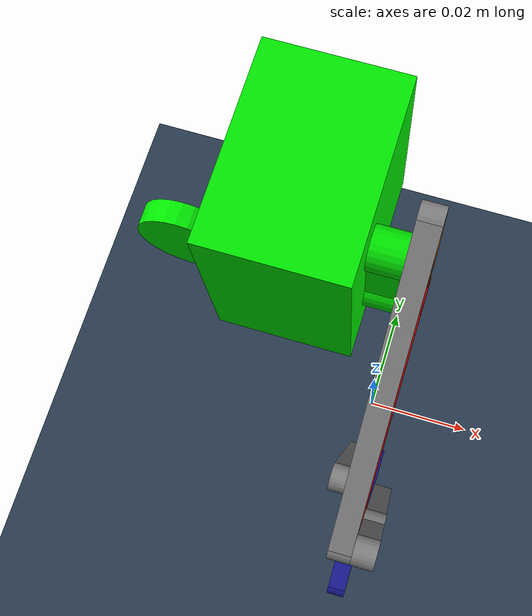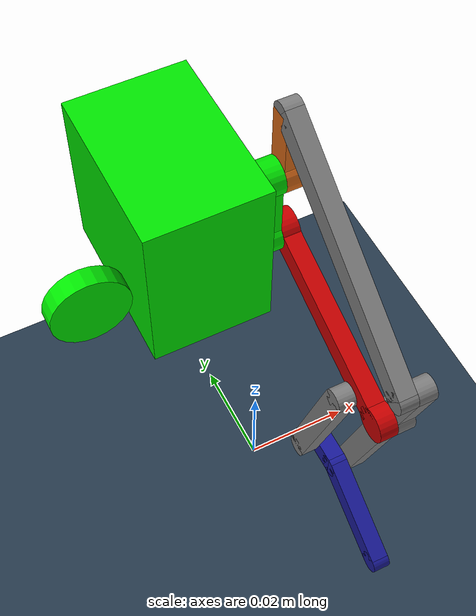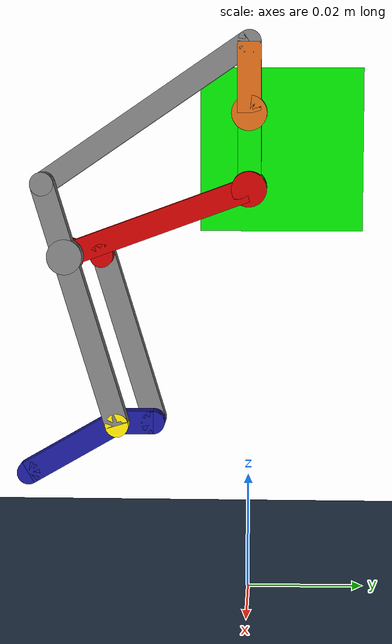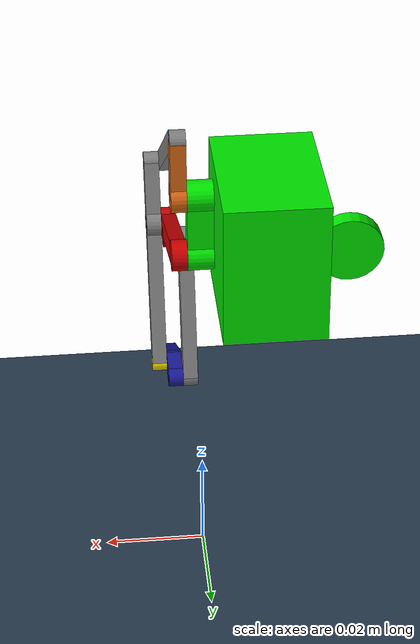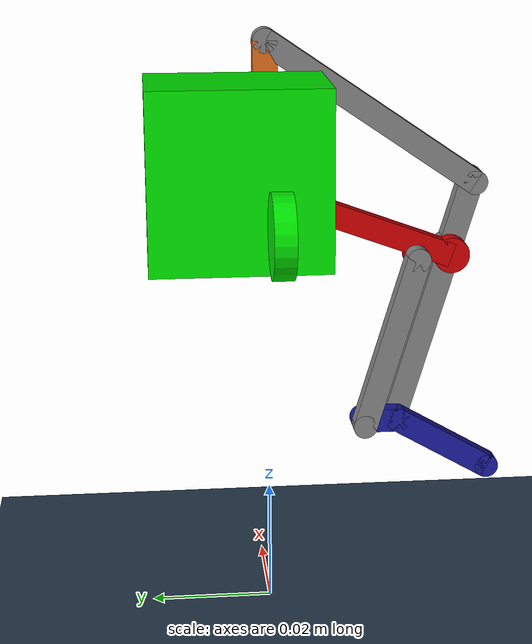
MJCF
<mujoco>
    <asset>
        <texture type="skybox" builtin="gradient" rgb1="0.3 0.5 0.7" rgb2="0 0 0" width="512" height="512" />
        <texture name="texplane" type="2d" builtin="checker" rgb1=".2 .3 .4" rgb2=".1 0.15 0.2" width="512" height="512" mark="cross" markrgb=".8 .8 .8" />

        <material name="matplane" reflectance="0" texture="texplane" texrepeat="10 10" texuniform="true" />
    </asset>

    <worldbody>
        <light diffuse=".5 .5 .5" pos="0 0 3" dir="0 0 -1"/>
        <geom name="ground" type="plane" size="0 0 1" pos="0 0 0" quat="1 0 0 0" material="matplane" condim="1" />

        <body name="base" pos="0 0 0.07">
            <geom name="box_hip" mass="0.015" type="box" size="0.00975 0.014 0.014" pos="-0.01225 0.0055 0.0064" rgba="0 .9 0 1"/>
            <geom name="box_base" mass="0.001" type="box" size="0.0025 0.0020 0.0064" pos="0 0 0.0064" rgba="0 .9 0 1"/>
            <geom name="cylinderA" type="cylinder" size="0.003 0.0025" pos="0 0 0" euler="0 90 0" rgba="0 .9 0 1"/>
            <geom name="cylinderB" type="cylinder" size="0.003 0.0025" pos="0 0 0.0128" euler="0 90 0" rgba="0 .9 0 1"/>
            <joint name="jointHip" pos="-0.0285 0 0" type="hinge" axis="0 1 0" damping="0.005" armature="0.00065" limited="true" range="-90 90" ref="0"/>
            <geom name="cylinderhip" type="cylinder" size="0.0065 0.00165" pos="-0.0285 0 0" euler="90 0 0" rgba="0 .9 0 1"/>

            <body name="r1" pos="0.004 0 0" euler="20 0 0">
                <joint name="jointA" pos="0 0 0" type="hinge" axis="1 0 0" damping="0.005" armature="0.00065" limited="true" range="-20 160" ref="0"/>
                <geom name="link_AE" mass="0.001" type="box" size="0.0015 0.0165 0.002" pos="0 -0.0165 0" euler="0 0 0" rgba=".8 0 0 1"/>
                <geom name="cylinderAEA" type="cylinder" size="0.003 0.0015" pos="0 0 0" euler="0 90 0" rgba=".8 0 0 1"/>
                <geom name="cylinderAEE" type="cylinder" size="0.003 0.0015" pos="0 -0.033 0" euler="0 90 0" rgba=".8 0 0 1"/>
                <geom name="cylinderAEF" type="cylinder" size="0.002 0.0015" pos="0 -0.027362 -0.002052" euler="0 90 0" rgba=".8 0 0 1"/>

                <body name="connection1" pos="0 -.033 0">
                    <geom name="cylinderAE_E" type="cylinder" size="0.003 0.0015" pos="0 0 0" euler="0 90 0" rgba="1 0.906 0 1"/>

                </body>

                <body name="linkFG" pos="-0.003 -0.027362 -0.002052" euler="-3.158826 0 0">
                    <joint name="jointF" pos="0.003 0 0" type="hinge" axis="1 0 0" />
                    <geom name="tibia1" mass="0.001" type="box" size="0.0015 0.002 0.015" pos="0 0 -0.015"/>
                    <geom name="cylinderFGF" type="cylinder" size="0.002 0.0015" pos="0 0 0" euler="0 90 0"/>
                    <geom name="cylinderFGG" type="cylinder" size="0.002 0.0015" pos="0 0 -0.03" euler="0 90 0"/>

                    <body name="linkHG" pos="0.003 0 -0.030" euler="73.15878 0 0">
                        <joint name="jointG" pos="0 0 0" type="hinge" axis="1 0 0"/>
                        <geom name="foot" mass="0.001" type="box" size="0.0015 0.002 0.003" pos="0 0 0.003" euler="0 0 0" rgba="0.1 0.1 0.6 1"/>
                        <geom name="cylinderHGG" type="cylinder" size="0.002 0.0015" pos="0 0 0" euler="0 90 0" rgba="0.1 0.1 0.6 1"/>
                        <geom name="cylinderHGH" type="cylinder" size="0.002 0.0015" pos="0 0 0.006" euler="0 90 0" rgba="0.1 0.1 0.6 1"/>
                        <geom name="boxHI" type="box" size="0.0015 0.002 0.009" pos="0 -0.0045 0.01379423" euler="30 0 0" rgba="0.1 0.1 0.6 1"/>
                        <geom name="cylinderI" type="cylinder" size="0.002 0.0015" pos="0 -0.009 0.02158846" euler="0 90 0" rgba="0.1 0.1 0.6 1"/>

                        <body name="connection3" pos="0 0 0.006">
                            <geom name="cylinderHIH" type="cylinder" size="0.002 0.0015" pos="0 0 0" euler="0 90 0" rgba="1 0.906 0 1"/>

                        </body>
                    </body>

                </body>

            </body>

            <body name="r2" pos="0.004 0 0.0128" euler="0 0 0">
                <joint name="jointB" pos="0 0 0" type="hinge" axis="1 0 0" damping="0.005" armature="0.00065" limited="true" range="-90 90" ref="0"/>
                <geom name="link_BC" mass="0.0002" type="box" size="0.0015 0.002 0.0059" pos="0 0 0.0059" rgba="0.851 0.412 0.086 1"/>
                <geom name="cylinderBCB" type="cylinder" size="0.003 0.0015" pos="0 0 0" euler="0 90 0" rgba="0.851 0.412 0.086 1"/>

                <body name="linkCD" pos="0 0 0.0118" euler="124.24637 0 0">
                    <joint name="jointC" pos="0 0 0" type="hinge" axis="1 0 0"/>
                    <geom name="fermur2" mass="0.001" type="box" size="0.0015 0.002 0.021" pos="0 0 0.021"/>
                    <geom name="cylinderCDC" type="cylinder" size="0.002 0.0015" pos="0 0 0" euler="0 90 0"/>
                    <geom name="cylinderCDD" type="cylinder" size="0.002 0.0015" pos="0 0 0.042" euler="0 90 0"/>

                    <body name="linkDE" pos="0.003 0 0.042" euler="-107.4051548 0 0">
                        <joint name="jointD" pos="0 0 0" type="hinge" axis="1 0 0" />
                        <geom name="tibia2" mass="0.001" type="box" size="0.0015 0.002 0.0214" pos="0 0 -0.0214"/>
                        <geom name="cylinderDED" type="cylinder" size="0.002 0.0015" pos="0 0 0" euler="0 90 0"/>
                        <geom name="cylinderDEE" type="cylinder" size="0.003 0.0015" pos="0 0 -0.0128" euler="0 90 0"/>

                        <body name="connection2" pos="0 0 0">
                            <geom name="cylinderDE_E" type="cylinder" size="0.003 0.0015" pos="0 0 -0.0128" euler="0 90 0" rgba="1 0.906 0 1"/>

                        </body>

                        <body name="connection4" pos="0 0 0">
                            <geom name="cylinderDEH" type="cylinder" size="0.002 0.0015" pos="0 0 -0.0428" euler="0 90 0" rgba="1 0.906 0 1"/>

                        </body>
                    </body>
                </body>
            </body>
        </body>

    </worldbody>

    <equality>
        <connect name="kinematic_link1" active="true" body1="connection1" body2="connection2" anchor="-0.003 0 0" solref="0.01 0.9"/>
        <connect name="kinematic_link2" active="true" body1="connection3" body2="connection4" anchor="-0.003 0 0" solref="0.01 0.9"/>
    </equality>

    <contact>
        <exclude name="e0" body1="r2" body2="linkCD" />
        <exclude name="e1" body1="r1" body2="linkDE" />
        <exclude name="e2" body1="r2" body2="base" />
        <exclude name="e3" body1="r1" body2="base" />
        <exclude name="e4" body1="linkCD" body2="linkDE" />
        <exclude name="e5" body1="linkHG" body2="linkDE" />

    </contact>

    <sensor>
        <jointpos name="servo1" joint="jointA"/>
        <jointpos name="servo2" joint="jointB"/>
        <jointpos name="servo3" joint="jointHip"/>
    </sensor>

    <actuator>
        <position name="servo1" gear="1" ctrllimited="true" ctrlrange="-0.349 2.79" forcelimited="true"  forcerange="-.16 .16" joint="jointA" kp="200"/>
        <position name="servo2" gear="1" ctrllimited="true" ctrlrange="-1.57 1.57" forcelimited="true"  forcerange="-.16 .16" joint="jointB" kp="200"/>
        <position name="servo3" gear="1" ctrllimited="true" ctrlrange="-1.57 1.57" forcelimited="true"  forcerange="-.16 .16" joint="jointHip" kp="200"/>
    </actuator>

</mujoco>
